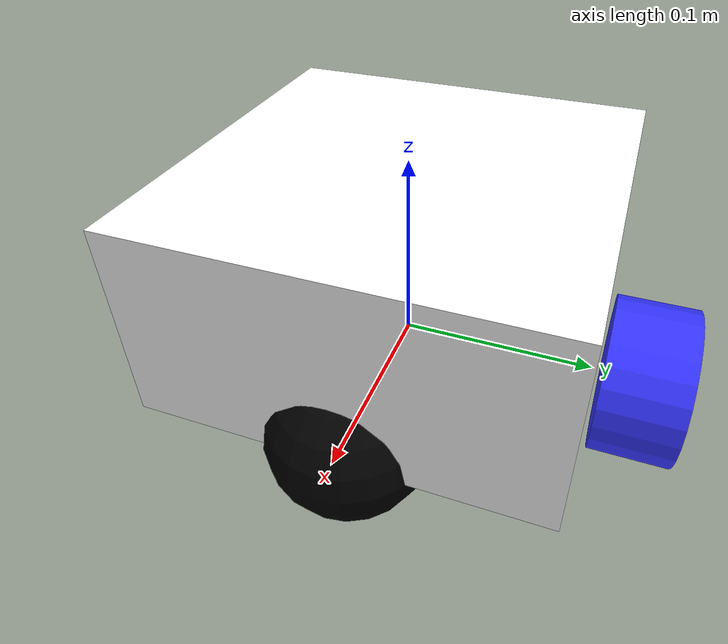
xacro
<?xml version="1.0"?>
<robot xmlns:xacro="http://www.ros.org/wiki/xacro" >

   <xacro:include filename="inertial_macros.xacro"/>

    <material name="white">
        <color rgba="1 1 1 1" />
    </material>

    <material name="orange">
        <color rgba="1 0.3 0.1 1"/>
    </material>

    <material name="blue">
        <color rgba="0.2 0.2 1 1"/>
    </material>

    <material name="black">
        <color rgba="0 0 0 1"/>
    </material>

    <!-- BASE LINK -->

    <link name="base_link">

    </link>

    <!-- CHASSIS LINK -->

    <joint name="chassis_joint" type="fixed">
        <parent link="base_link"/>
        <child link="chassis"/>
        <origin xyz="0 0 0"/>
    </joint>

    <link name="chassis">
        <visual>
            <origin xyz="0 0 0.05"/>
            <geometry>
                <box size="0.2 0.2 0.1"/>
            </geometry>
            <material name="white"/>
        </visual>
        <collision>
            <origin xyz="0.1 0 0.05"/>
            <geometry>
                <box size="0.2 0.2 0.1"/>
            </geometry>
        </collision>
        <xacro:inertial_box mass="0.5" x="0.2" y="0.2" z="0.1">
            <origin xyz="0.1 0 0.05" rpy="0 0 0"/>
        </xacro:inertial_box>
    </link>

    <!-- LEFT WHEEL LINK -->

    <joint name="left_wheel_joint" type="continuous">
        <parent link="base_link"/>
        <child link="left_wheel"/>
        <origin xyz="0 0.125 0" rpy="-${pi/2} 0 0" />
        <axis xyz="0 0 1"/>
    </joint>

    <link name="left_wheel">
        <visual>
            <geometry>
                <cylinder radius="0.04" length="0.04"/>
            </geometry>
            <material name="blue"/>
        </visual>
        <collision>
            <geometry>
                <cylinder radius="0.04" length="0.04"/>
            </geometry>
        </collision>
        <xacro:inertial_cylinder mass="0.1" length="0.04" radius="0.04">
            <origin xyz="0 0 0" rpy="0 0 0"/>
        </xacro:inertial_cylinder>
    </link>

    <!-- RIGHT WHEEL LINK -->

    <joint name="right_wheel_joint" type="continuous">
        <parent link="base_link"/>
        <child link="right_wheel"/>
        <origin xyz="0 -0.125 0" rpy="${pi/2} 0 0" />
        <axis xyz="0 0 -1"/>
    </joint>

    <link name="right_wheel">
        <visual>
            <geometry>
                <cylinder radius="0.04" length="0.04"/>
            </geometry>
            <material name="blue"/>
        </visual>
        <collision>
            <geometry>
                <cylinder radius="0.04" length="0.04"/>
            </geometry>
        </collision>
        <xacro:inertial_cylinder mass="0.1" length="0.04" radius="0.04">
            <origin xyz="0 0 0" rpy="0 0 0"/>
        </xacro:inertial_cylinder>
    </link>

    <!-- CASTER WHEEL LINK FRONT -->

    <joint name="caster_wheel_front_joint" type="fixed">
        <parent link="chassis"/>
        <child link="caster_wheel_front"/>
        <origin xyz="0.08 0 0"/>
    </joint>

    <link name="caster_wheel_front">
        <visual>
            <geometry>
                <sphere radius="0.04"/>
            </geometry>
            <material name="black"/>
        </visual>
        <collision>
            <geometry>
                <sphere radius="0.04"/>
            </geometry>
        </collision>
        <xacro:inertial_sphere mass="0.1" radius="0.04">
            <origin xyz="0 0 0" rpy="0 0 0"/>
        </xacro:inertial_sphere>
    </link>

    <!-- CASTER WHEEL LINK BACK-->

    <joint name="caster_wheel_back_joint" type="fixed">
        <parent link="chassis"/>
        <child link="caster_wheel_back"/>
        <origin xyz="-0.08 0 0"/>
    </joint>

    <link name="caster_wheel_back">
        <visual>
            <geometry>
                <sphere radius="0.04"/>
            </geometry>
            <material name="black"/>
        </visual>
        <collision>
            <geometry>
                <sphere radius="0.04"/>
            </geometry>
        </collision>
        <xacro:inertial_sphere mass="0.1" radius="0.04">
            <origin xyz="0 0 0" rpy="0 0 0"/>
        </xacro:inertial_sphere>
    </link>

</robot>
